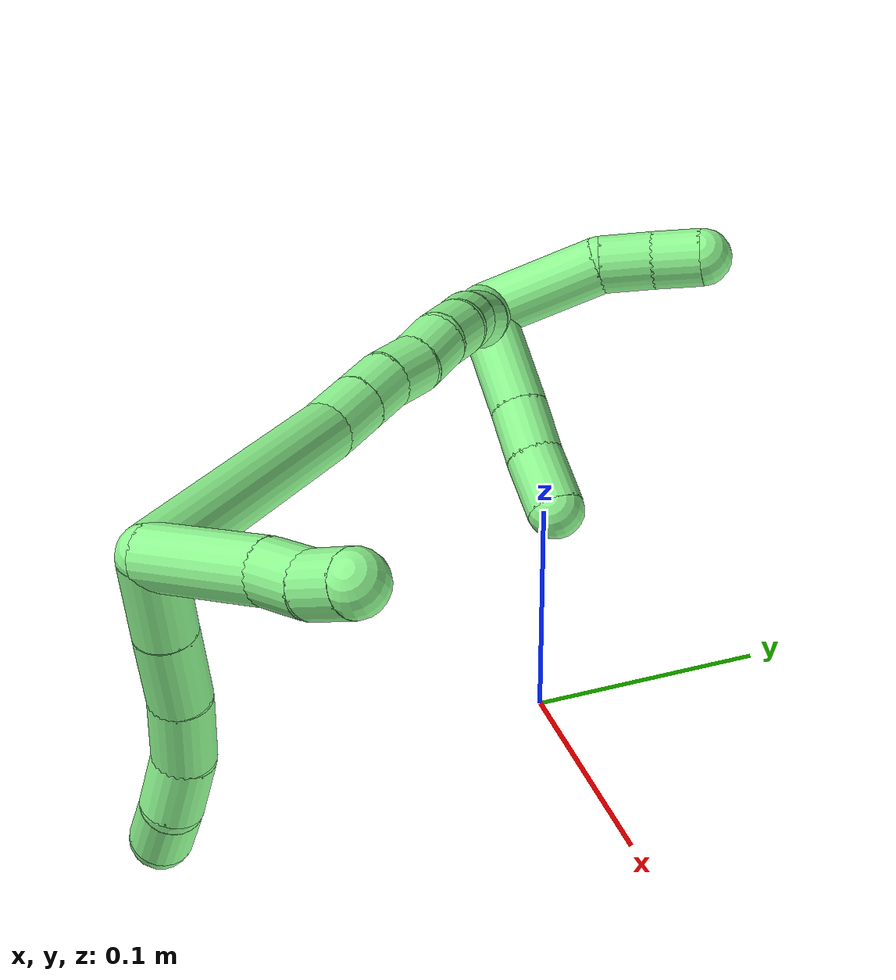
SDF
<sdf version="1.7">
 <world name="default">
  <model name="13">
   <static>0</static>
   <link name="13">
    <collision name="collision-cylinder-e_1_2_8">
     <pose>-0.000504 -0.008064 -0.015638 2.66547 -0.028644 -0.117911</pose>
     <geometry><cylinder><radius>0.0125</radius><length>0.035203</length></cylinder></geometry>
     <surface>
      <friction><ode><mu>1.16</mu><mu2>1.16</mu2><slip1>0</slip1><slip2>0</slip2></ode></friction>
      <contact><ode><kp>1e+06</kp><kd>1</kd><max_vel>0</max_vel><min_depth>0.001</min_depth></ode></contact>
     </surface>
    </collision>
    <visual name="visual-cylinder-e_1_2_8">
     <pose>-0.000504 -0.008064 -0.015638 2.66547 -0.028644 -0.117911</pose>
     <geometry><cylinder><radius>0.0125</radius><length>0.035203</length></cylinder></geometry>
     <material><ambient>0.564706 0.984314 0.572549 1</ambient></material>
    </visual>
    <collision name="collision-cylinder-e_2_8_9">
     <pose>-0.001632 -0.023233 -0.046283 2.69944 -0.037574 -0.166815</pose>
     <geometry><cylinder><radius>0.0125</radius><length>0.033233</length></cylinder></geometry>
     <surface>
      <friction><ode><mu>1.16</mu><mu2>1.16</mu2><slip1>0</slip1><slip2>0</slip2></ode></friction>
      <contact><ode><kp>1e+06</kp><kd>1</kd><max_vel>0</max_vel><min_depth>0.001</min_depth></ode></contact>
     </surface>
    </collision>
    <visual name="visual-cylinder-e_2_8_9">
     <pose>-0.001632 -0.023233 -0.046283 2.69944 -0.037574 -0.166815</pose>
     <geometry><cylinder><radius>0.0125</radius><length>0.033233</length></cylinder></geometry>
     <material><ambient>0.564706 0.984314 0.572549 1</ambient></material>
    </visual>
    <collision name="collision-cylinder-e_3_9_10">
     <pose>-0.004413 -0.037306 -0.074735 2.6634 -0.141421 -0.565562</pose>
     <geometry><cylinder><radius>0.0125</radius><length>0.030591</length></cylinder></geometry>
     <surface>
      <friction><ode><mu>1.16</mu><mu2>1.16</mu2><slip1>0</slip1><slip2>0</slip2></ode></friction>
      <contact><ode><kp>1e+06</kp><kd>1</kd><max_vel>0</max_vel><min_depth>0.001</min_depth></ode></contact>
     </surface>
    </collision>
    <visual name="visual-cylinder-e_3_9_10">
     <pose>-0.004413 -0.037306 -0.074735 2.6634 -0.141421 -0.565562</pose>
     <geometry><cylinder><radius>0.0125</radius><length>0.030591</length></cylinder></geometry>
     <material><ambient>0.564706 0.984314 0.572549 1</ambient></material>
    </visual>
    <collision name="collision-cylinder-e_4_10_11">
     <pose>-0.010717 -0.051595 -0.098049 2.5034 -0.325635 -0.922831</pose>
     <geometry><cylinder><radius>0.0125</radius><length>0.025939</length></cylinder></geometry>
     <surface>
      <friction><ode><mu>1.16</mu><mu2>1.16</mu2><slip1>0</slip1><slip2>0</slip2></ode></friction>
      <contact><ode><kp>1e+06</kp><kd>1</kd><max_vel>0</max_vel><min_depth>0.001</min_depth></ode></contact>
     </surface>
    </collision>
    <visual name="visual-cylinder-e_4_10_11">
     <pose>-0.010717 -0.051595 -0.098049 2.5034 -0.325635 -0.922831</pose>
     <geometry><cylinder><radius>0.0125</radius><length>0.025939</length></cylinder></geometry>
     <material><ambient>0.564706 0.984314 0.572549 1</ambient></material>
    </visual>
    <collision name="collision-cylinder-e_5_11_6">
     <pose>-0.020154 -0.062608 -0.118645 2.81006 -0.436125 -1.84819</pose>
     <geometry><cylinder><radius>0.0125</radius><length>0.025034</length></cylinder></geometry>
     <surface>
      <friction><ode><mu>1.16</mu><mu2>1.16</mu2><slip1>0</slip1><slip2>0</slip2></ode></friction>
      <contact><ode><kp>1e+06</kp><kd>1</kd><max_vel>0</max_vel><min_depth>0.001</min_depth></ode></contact>
     </surface>
    </collision>
    <visual name="visual-cylinder-e_5_11_6">
     <pose>-0.020154 -0.062608 -0.118645 2.81006 -0.436125 -1.84819</pose>
     <geometry><cylinder><radius>0.0125</radius><length>0.025034</length></cylinder></geometry>
     <material><ambient>0.564706 0.984314 0.572549 1</ambient></material>
    </visual>
    <collision name="collision-cylinder-e_1_2_12">
     <pose>0.026426 -0.002056 0.007126 0.280943 1.29717 0.213543</pose>
     <geometry><cylinder><radius>0.0125</radius><length>0.054893</length></cylinder></geometry>
     <surface>
      <friction><ode><mu>1.16</mu><mu2>1.16</mu2><slip1>0</slip1><slip2>0</slip2></ode></friction>
      <contact><ode><kp>1e+06</kp><kd>1</kd><max_vel>0</max_vel><min_depth>0.001</min_depth></ode></contact>
     </surface>
    </collision>
    <visual name="visual-cylinder-e_1_2_12">
     <pose>0.026426 -0.002056 0.007126 0.280943 1.29717 0.213543</pose>
     <geometry><cylinder><radius>0.0125</radius><length>0.054893</length></cylinder></geometry>
     <material><ambient>0.564706 0.984314 0.572549 1</ambient></material>
    </visual>
    <collision name="collision-cylinder-e_2_12_13">
     <pose>0.063206 -0.006817 0.018401 0.57757 1.12469 0.370178</pose>
     <geometry><cylinder><radius>0.0125</radius><length>0.022956</length></cylinder></geometry>
     <surface>
      <friction><ode><mu>1.16</mu><mu2>1.16</mu2><slip1>0</slip1><slip2>0</slip2></ode></friction>
      <contact><ode><kp>1e+06</kp><kd>1</kd><max_vel>0</max_vel><min_depth>0.001</min_depth></ode></contact>
     </surface>
    </collision>
    <visual name="visual-cylinder-e_2_12_13">
     <pose>0.063206 -0.006817 0.018401 0.57757 1.12469 0.370178</pose>
     <geometry><cylinder><radius>0.0125</radius><length>0.022956</length></cylinder></geometry>
     <material><ambient>0.564706 0.984314 0.572549 1</ambient></material>
    </visual>
    <collision name="collision-cylinder-e_3_13_5">
     <pose>0.083254 -0.009982 0.027888 0.086218 1.06588 0.050879</pose>
     <geometry><cylinder><radius>0.0125</radius><length>0.02215</length></cylinder></geometry>
     <surface>
      <friction><ode><mu>1.16</mu><mu2>1.16</mu2><slip1>0</slip1><slip2>0</slip2></ode></friction>
      <contact><ode><kp>1e+06</kp><kd>1</kd><max_vel>0</max_vel><min_depth>0.001</min_depth></ode></contact>
     </surface>
    </collision>
    <visual name="visual-cylinder-e_3_13_5">
     <pose>0.083254 -0.009982 0.027888 0.086218 1.06588 0.050879</pose>
     <geometry><cylinder><radius>0.0125</radius><length>0.02215</length></cylinder></geometry>
     <material><ambient>0.564706 0.984314 0.572549 1</ambient></material>
    </visual>
    <collision name="collision-cylinder-e_1_2_14">
     <pose>0.003164 0.048297 -0.047504 -2.34792 0.046673 -0.111278</pose>
     <geometry><cylinder><radius>0.0125</radius><length>0.135635</length></cylinder></geometry>
     <surface>
      <friction><ode><mu>1.16</mu><mu2>1.16</mu2><slip1>0</slip1><slip2>0</slip2></ode></friction>
      <contact><ode><kp>1e+06</kp><kd>1</kd><max_vel>0</max_vel><min_depth>0.001</min_depth></ode></contact>
     </surface>
    </collision>
    <visual name="visual-cylinder-e_1_2_14">
     <pose>0.003164 0.048297 -0.047504 -2.34792 0.046673 -0.111278</pose>
     <geometry><cylinder><radius>0.0125</radius><length>0.135635</length></cylinder></geometry>
     <material><ambient>0.564706 0.984314 0.572549 1</ambient></material>
    </visual>
    <collision name="collision-cylinder-e_2_14_15">
     <pose>0.008323 0.106459 -0.101605 -2.16027 0.166551 -0.309972</pose>
     <geometry><cylinder><radius>0.0125</radius><length>0.024069</length></cylinder></geometry>
     <surface>
      <friction><ode><mu>1.16</mu><mu2>1.16</mu2><slip1>0</slip1><slip2>0</slip2></ode></friction>
      <contact><ode><kp>1e+06</kp><kd>1</kd><max_vel>0</max_vel><min_depth>0.001</min_depth></ode></contact>
     </surface>
    </collision>
    <visual name="visual-cylinder-e_2_14_15">
     <pose>0.008323 0.106459 -0.101605 -2.16027 0.166551 -0.309972</pose>
     <geometry><cylinder><radius>0.0125</radius><length>0.024069</length></cylinder></geometry>
     <material><ambient>0.564706 0.984314 0.572549 1</ambient></material>
    </visual>
    <collision name="collision-cylinder-e_3_15_16">
     <pose>0.011995 0.124603 -0.113724 -2.15896 0.16695 -0.310224</pose>
     <geometry><cylinder><radius>0.0125</radius><length>0.020183</length></cylinder></geometry>
     <surface>
      <friction><ode><mu>1.16</mu><mu2>1.16</mu2><slip1>0</slip1><slip2>0</slip2></ode></friction>
      <contact><ode><kp>1e+06</kp><kd>1</kd><max_vel>0</max_vel><min_depth>0.001</min_depth></ode></contact>
     </surface>
    </collision>
    <visual name="visual-cylinder-e_3_15_16">
     <pose>0.011995 0.124603 -0.113724 -2.15896 0.16695 -0.310224</pose>
     <geometry><cylinder><radius>0.0125</radius><length>0.020183</length></cylinder></geometry>
     <material><ambient>0.564706 0.984314 0.572549 1</ambient></material>
    </visual>
    <collision name="collision-cylinder-e_4_16_17">
     <pose>0.016258 0.140272 -0.125484 -2.27186 0.261246 -0.551219</pose>
     <geometry><cylinder><radius>0.0125</radius><length>0.020022</length></cylinder></geometry>
     <surface>
      <friction><ode><mu>1.16</mu><mu2>1.16</mu2><slip1>0</slip1><slip2>0</slip2></ode></friction>
      <contact><ode><kp>1e+06</kp><kd>1</kd><max_vel>0</max_vel><min_depth>0.001</min_depth></ode></contact>
     </surface>
    </collision>
    <visual name="visual-cylinder-e_4_16_17">
     <pose>0.016258 0.140272 -0.125484 -2.27186 0.261246 -0.551219</pose>
     <geometry><cylinder><radius>0.0125</radius><length>0.020022</length></cylinder></geometry>
     <material><ambient>0.564706 0.984314 0.572549 1</ambient></material>
    </visual>
    <collision name="collision-cylinder-e_5_17_18">
     <pose>0.020027 0.156 -0.13712 -2.14541 0.118593 -0.217464</pose>
     <geometry><cylinder><radius>0.0125</radius><length>0.020005</length></cylinder></geometry>
     <surface>
      <friction><ode><mu>1.16</mu><mu2>1.16</mu2><slip1>0</slip1><slip2>0</slip2></ode></friction>
      <contact><ode><kp>1e+06</kp><kd>1</kd><max_vel>0</max_vel><min_depth>0.001</min_depth></ode></contact>
     </surface>
    </collision>
    <visual name="visual-cylinder-e_5_17_18">
     <pose>0.020027 0.156 -0.13712 -2.14541 0.118593 -0.217464</pose>
     <geometry><cylinder><radius>0.0125</radius><length>0.020005</length></cylinder></geometry>
     <material><ambient>0.564706 0.984314 0.572549 1</ambient></material>
    </visual>
    <collision name="collision-cylinder-e_6_18_19">
     <pose>0.021506 0.171338 -0.149703 -2.36916 0.02949 -0.072494</pose>
     <geometry><cylinder><radius>0.0125</radius><length>0.020072</length></cylinder></geometry>
     <surface>
      <friction><ode><mu>1.16</mu><mu2>1.16</mu2><slip1>0</slip1><slip2>0</slip2></ode></friction>
      <contact><ode><kp>1e+06</kp><kd>1</kd><max_vel>0</max_vel><min_depth>0.001</min_depth></ode></contact>
     </surface>
    </collision>
    <visual name="visual-cylinder-e_6_18_19">
     <pose>0.021506 0.171338 -0.149703 -2.36916 0.02949 -0.072494</pose>
     <geometry><cylinder><radius>0.0125</radius><length>0.020072</length></cylinder></geometry>
     <material><ambient>0.564706 0.984314 0.572549 1</ambient></material>
    </visual>
    <collision name="collision-cylinder-e_7_19_20">
     <pose>0.020011 0.184228 -0.164769 -2.49986 -0.180133 0.530652</pose>
     <geometry><cylinder><radius>0.0125</radius><length>0.020001</length></cylinder></geometry>
     <surface>
      <friction><ode><mu>1.16</mu><mu2>1.16</mu2><slip1>0</slip1><slip2>0</slip2></ode></friction>
      <contact><ode><kp>1e+06</kp><kd>1</kd><max_vel>0</max_vel><min_depth>0.001</min_depth></ode></contact>
     </surface>
    </collision>
    <visual name="visual-cylinder-e_7_19_20">
     <pose>0.020011 0.184228 -0.164769 -2.49986 -0.180133 0.530652</pose>
     <geometry><cylinder><radius>0.0125</radius><length>0.020001</length></cylinder></geometry>
     <material><ambient>0.564706 0.984314 0.572549 1</ambient></material>
    </visual>
    <collision name="collision-cylinder-e_8_20_21">
     <pose>0.017369 0.194893 -0.181402 -2.64207 -0.085018 0.330446</pose>
     <geometry><cylinder><radius>0.0125</radius><length>0.020013</length></cylinder></geometry>
     <surface>
      <friction><ode><mu>1.16</mu><mu2>1.16</mu2><slip1>0</slip1><slip2>0</slip2></ode></friction>
      <contact><ode><kp>1e+06</kp><kd>1</kd><max_vel>0</max_vel><min_depth>0.001</min_depth></ode></contact>
     </surface>
    </collision>
    <visual name="visual-cylinder-e_8_20_21">
     <pose>0.017369 0.194893 -0.181402 -2.64207 -0.085018 0.330446</pose>
     <geometry><cylinder><radius>0.0125</radius><length>0.020013</length></cylinder></geometry>
     <material><ambient>0.564706 0.984314 0.572549 1</ambient></material>
    </visual>
    <collision name="collision-cylinder-e_9_21_1">
     <pose>0.014083 0.205564 -0.197856 -2.48829 -0.246149 0.700173</pose>
     <geometry><cylinder><radius>0.0125</radius><length>0.020001</length></cylinder></geometry>
     <surface>
      <friction><ode><mu>1.16</mu><mu2>1.16</mu2><slip1>0</slip1><slip2>0</slip2></ode></friction>
      <contact><ode><kp>1e+06</kp><kd>1</kd><max_vel>0</max_vel><min_depth>0.001</min_depth></ode></contact>
     </surface>
    </collision>
    <visual name="visual-cylinder-e_9_21_1">
     <pose>0.014083 0.205564 -0.197856 -2.48829 -0.246149 0.700173</pose>
     <geometry><cylinder><radius>0.0125</radius><length>0.020001</length></cylinder></geometry>
     <material><ambient>0.564706 0.984314 0.572549 1</ambient></material>
    </visual>
    <collision name="collision-cylinder-e_1_1_22">
     <pose>0.024375 0.190637 -0.208646 1.71802 0.5439 0.625316</pose>
     <geometry><cylinder><radius>0.0125</radius><length>0.049198</length></cylinder></geometry>
     <surface>
      <friction><ode><mu>1.16</mu><mu2>1.16</mu2><slip1>0</slip1><slip2>0</slip2></ode></friction>
      <contact><ode><kp>1e+06</kp><kd>1</kd><max_vel>0</max_vel><min_depth>0.001</min_depth></ode></contact>
     </surface>
    </collision>
    <visual name="visual-cylinder-e_1_1_22">
     <pose>0.024375 0.190637 -0.208646 1.71802 0.5439 0.625316</pose>
     <geometry><cylinder><radius>0.0125</radius><length>0.049198</length></cylinder></geometry>
     <material><ambient>0.564706 0.984314 0.572549 1</ambient></material>
    </visual>
    <collision name="collision-cylinder-e_2_22_23">
     <pose>0.043153 0.159462 -0.212955 1.68821 0.525649 0.587773</pose>
     <geometry><cylinder><radius>0.0125</radius><length>0.024105</length></cylinder></geometry>
     <surface>
      <friction><ode><mu>1.16</mu><mu2>1.16</mu2><slip1>0</slip1><slip2>0</slip2></ode></friction>
      <contact><ode><kp>1e+06</kp><kd>1</kd><max_vel>0</max_vel><min_depth>0.001</min_depth></ode></contact>
     </surface>
    </collision>
    <visual name="visual-cylinder-e_2_22_23">
     <pose>0.043153 0.159462 -0.212955 1.68821 0.525649 0.587773</pose>
     <geometry><cylinder><radius>0.0125</radius><length>0.024105</length></cylinder></geometry>
     <material><ambient>0.564706 0.984314 0.572549 1</ambient></material>
    </visual>
    <collision name="collision-cylinder-e_3_23_4">
     <pose>0.056642 0.138065 -0.215105 1.65469 0.591345 0.639819</pose>
     <geometry><cylinder><radius>0.0125</radius><length>0.026697</length></cylinder></geometry>
     <surface>
      <friction><ode><mu>1.16</mu><mu2>1.16</mu2><slip1>0</slip1><slip2>0</slip2></ode></friction>
      <contact><ode><kp>1e+06</kp><kd>1</kd><max_vel>0</max_vel><min_depth>0.001</min_depth></ode></contact>
     </surface>
    </collision>
    <visual name="visual-cylinder-e_3_23_4">
     <pose>0.056642 0.138065 -0.215105 1.65469 0.591345 0.639819</pose>
     <geometry><cylinder><radius>0.0125</radius><length>0.026697</length></cylinder></geometry>
     <material><ambient>0.564706 0.984314 0.572549 1</ambient></material>
    </visual>
    <collision name="collision-cylinder-e_1_1_24">
     <pose>0.03599 0.224027 -0.202094 -1.30185 1.07913 -0.855861</pose>
     <geometry><cylinder><radius>0.0125</radius><length>0.05523</length></cylinder></geometry>
     <surface>
      <friction><ode><mu>1.16</mu><mu2>1.16</mu2><slip1>0</slip1><slip2>0</slip2></ode></friction>
      <contact><ode><kp>1e+06</kp><kd>1</kd><max_vel>0</max_vel><min_depth>0.001</min_depth></ode></contact>
     </surface>
    </collision>
    <visual name="visual-cylinder-e_1_1_24">
     <pose>0.03599 0.224027 -0.202094 -1.30185 1.07913 -0.855861</pose>
     <geometry><cylinder><radius>0.0125</radius><length>0.05523</length></cylinder></geometry>
     <material><ambient>0.564706 0.984314 0.572549 1</ambient></material>
    </visual>
    <collision name="collision-cylinder-e_2_24_25">
     <pose>0.071336 0.239909 -0.200251 -2.02581 1.24726 -1.71256</pose>
     <geometry><cylinder><radius>0.0125</radius><length>0.023209</length></cylinder></geometry>
     <surface>
      <friction><ode><mu>1.16</mu><mu2>1.16</mu2><slip1>0</slip1><slip2>0</slip2></ode></friction>
      <contact><ode><kp>1e+06</kp><kd>1</kd><max_vel>0</max_vel><min_depth>0.001</min_depth></ode></contact>
     </surface>
    </collision>
    <visual name="visual-cylinder-e_2_24_25">
     <pose>0.071336 0.239909 -0.200251 -2.02581 1.24726 -1.71256</pose>
     <geometry><cylinder><radius>0.0125</radius><length>0.023209</length></cylinder></geometry>
     <material><ambient>0.564706 0.984314 0.572549 1</ambient></material>
    </visual>
    <collision name="collision-cylinder-e_3_25_3">
     <pose>0.092837 0.245587 -0.202511 -1.83452 1.3417 -1.6065</pose>
     <geometry><cylinder><radius>0.0125</radius><length>0.021562</length></cylinder></geometry>
     <surface>
      <friction><ode><mu>1.16</mu><mu2>1.16</mu2><slip1>0</slip1><slip2>0</slip2></ode></friction>
      <contact><ode><kp>1e+06</kp><kd>1</kd><max_vel>0</max_vel><min_depth>0.001</min_depth></ode></contact>
     </surface>
    </collision>
    <visual name="visual-cylinder-e_3_25_3">
     <pose>0.092837 0.245587 -0.202511 -1.83452 1.3417 -1.6065</pose>
     <geometry><cylinder><radius>0.0125</radius><length>0.021562</length></cylinder></geometry>
     <material><ambient>0.564706 0.984314 0.572549 1</ambient></material>
    </visual>
    <collision name="collision-sphere-3">
     <pose>0.103336 0.24795 -0.203149 0 -0 0</pose>
     <geometry><sphere><radius>0.0125</radius></sphere></geometry>
     <surface>
      <friction><ode><mu>1.16</mu><mu2>1.16</mu2><slip1>0</slip1><slip2>0</slip2></ode></friction>
      <contact><ode><kp>1e+06</kp><kd>1</kd><max_vel>0</max_vel><min_depth>0.001</min_depth></ode></contact>
     </surface>
    </collision>
    <visual name="visual-sphere-3">
     <pose>0.103336 0.24795 -0.203149 0 -0 0</pose>
     <geometry><sphere><radius>0.0125</radius></sphere></geometry>
     <material><ambient>0.564706 0.984314 0.572549 1</ambient></material>
    </visual>
    <collision name="collision-sphere-25">
     <pose>0.082338 0.243223 -0.201873 0 -0 0</pose>
     <geometry><sphere><radius>0.0125</radius></sphere></geometry>
     <surface>
      <friction><ode><mu>1.16</mu><mu2>1.16</mu2><slip1>0</slip1><slip2>0</slip2></ode></friction>
      <contact><ode><kp>1e+06</kp><kd>1</kd><max_vel>0</max_vel><min_depth>0.001</min_depth></ode></contact>
     </surface>
    </collision>
    <visual name="visual-sphere-25">
     <pose>0.082338 0.243223 -0.201873 0 -0 0</pose>
     <geometry><sphere><radius>0.0125</radius></sphere></geometry>
     <material><ambient>0.564706 0.984314 0.572549 1</ambient></material>
    </visual>
    <collision name="collision-sphere-24">
     <pose>0.060334 0.236595 -0.19863 0 -0 0</pose>
     <geometry><sphere><radius>0.0125</radius></sphere></geometry>
     <surface>
      <friction><ode><mu>1.16</mu><mu2>1.16</mu2><slip1>0</slip1><slip2>0</slip2></ode></friction>
      <contact><ode><kp>1e+06</kp><kd>1</kd><max_vel>0</max_vel><min_depth>0.001</min_depth></ode></contact>
     </surface>
    </collision>
    <visual name="visual-sphere-24">
     <pose>0.060334 0.236595 -0.19863 0 -0 0</pose>
     <geometry><sphere><radius>0.0125</radius></sphere></geometry>
     <material><ambient>0.564706 0.984314 0.572549 1</ambient></material>
    </visual>
    <collision name="collision-sphere-4">
     <pose>0.064083 0.127023 -0.216033 0 -0 0</pose>
     <geometry><sphere><radius>0.0125</radius></sphere></geometry>
     <surface>
      <friction><ode><mu>1.16</mu><mu2>1.16</mu2><slip1>0</slip1><slip2>0</slip2></ode></friction>
      <contact><ode><kp>1e+06</kp><kd>1</kd><max_vel>0</max_vel><min_depth>0.001</min_depth></ode></contact>
     </surface>
    </collision>
    <visual name="visual-sphere-4">
     <pose>0.064083 0.127023 -0.216033 0 -0 0</pose>
     <geometry><sphere><radius>0.0125</radius></sphere></geometry>
     <material><ambient>0.564706 0.984314 0.572549 1</ambient></material>
    </visual>
    <collision name="collision-sphere-23">
     <pose>0.0492 0.149108 -0.214176 0 -0 0</pose>
     <geometry><sphere><radius>0.0125</radius></sphere></geometry>
     <surface>
      <friction><ode><mu>1.16</mu><mu2>1.16</mu2><slip1>0</slip1><slip2>0</slip2></ode></friction>
      <contact><ode><kp>1e+06</kp><kd>1</kd><max_vel>0</max_vel><min_depth>0.001</min_depth></ode></contact>
     </surface>
    </collision>
    <visual name="visual-sphere-23">
     <pose>0.0492 0.149108 -0.214176 0 -0 0</pose>
     <geometry><sphere><radius>0.0125</radius></sphere></geometry>
     <material><ambient>0.564706 0.984314 0.572549 1</ambient></material>
    </visual>
    <collision name="collision-sphere-22">
     <pose>0.037105 0.169815 -0.211734 0 -0 0</pose>
     <geometry><sphere><radius>0.0125</radius></sphere></geometry>
     <surface>
      <friction><ode><mu>1.16</mu><mu2>1.16</mu2><slip1>0</slip1><slip2>0</slip2></ode></friction>
      <contact><ode><kp>1e+06</kp><kd>1</kd><max_vel>0</max_vel><min_depth>0.001</min_depth></ode></contact>
     </surface>
    </collision>
    <visual name="visual-sphere-22">
     <pose>0.037105 0.169815 -0.211734 0 -0 0</pose>
     <geometry><sphere><radius>0.0125</radius></sphere></geometry>
     <material><ambient>0.564706 0.984314 0.572549 1</ambient></material>
    </visual>
    <collision name="collision-sphere-1">
     <pose>0.011646 0.211459 -0.205558 0 -0 0</pose>
     <geometry><sphere><radius>0.0125</radius></sphere></geometry>
     <surface>
      <friction><ode><mu>1.16</mu><mu2>1.16</mu2><slip1>0</slip1><slip2>0</slip2></ode></friction>
      <contact><ode><kp>1e+06</kp><kd>1</kd><max_vel>0</max_vel><min_depth>0.001</min_depth></ode></contact>
     </surface>
    </collision>
    <visual name="visual-sphere-1">
     <pose>0.011646 0.211459 -0.205558 0 -0 0</pose>
     <geometry><sphere><radius>0.0125</radius></sphere></geometry>
     <material><ambient>0.564706 0.984314 0.572549 1</ambient></material>
    </visual>
    <collision name="collision-sphere-21">
     <pose>0.01652 0.199668 -0.190154 0 -0 0</pose>
     <geometry><sphere><radius>0.0125</radius></sphere></geometry>
     <surface>
      <friction><ode><mu>1.16</mu><mu2>1.16</mu2><slip1>0</slip1><slip2>0</slip2></ode></friction>
      <contact><ode><kp>1e+06</kp><kd>1</kd><max_vel>0</max_vel><min_depth>0.001</min_depth></ode></contact>
     </surface>
    </collision>
    <visual name="visual-sphere-21">
     <pose>0.01652 0.199668 -0.190154 0 -0 0</pose>
     <geometry><sphere><radius>0.0125</radius></sphere></geometry>
     <material><ambient>0.564706 0.984314 0.572549 1</ambient></material>
    </visual>
    <collision name="collision-sphere-6">
     <pose>-0.025442 -0.066301 -0.129373 0 -0 0</pose>
     <geometry><sphere><radius>0.0125</radius></sphere></geometry>
     <surface>
      <friction><ode><mu>1.16</mu><mu2>1.16</mu2><slip1>0</slip1><slip2>0</slip2></ode></friction>
      <contact><ode><kp>1e+06</kp><kd>1</kd><max_vel>0</max_vel><min_depth>0.001</min_depth></ode></contact>
     </surface>
    </collision>
    <visual name="visual-sphere-6">
     <pose>-0.025442 -0.066301 -0.129373 0 -0 0</pose>
     <geometry><sphere><radius>0.0125</radius></sphere></geometry>
     <material><ambient>0.564706 0.984314 0.572549 1</ambient></material>
    </visual>
    <collision name="collision-sphere-11">
     <pose>-0.014866 -0.058915 -0.107918 0 -0 0</pose>
     <geometry><sphere><radius>0.0125</radius></sphere></geometry>
     <surface>
      <friction><ode><mu>1.16</mu><mu2>1.16</mu2><slip1>0</slip1><slip2>0</slip2></ode></friction>
      <contact><ode><kp>1e+06</kp><kd>1</kd><max_vel>0</max_vel><min_depth>0.001</min_depth></ode></contact>
     </surface>
    </collision>
    <visual name="visual-sphere-11">
     <pose>-0.014866 -0.058915 -0.107918 0 -0 0</pose>
     <geometry><sphere><radius>0.0125</radius></sphere></geometry>
     <material><ambient>0.564706 0.984314 0.572549 1</ambient></material>
    </visual>
    <collision name="collision-sphere-10">
     <pose>-0.006568 -0.044275 -0.088179 0 -0 0</pose>
     <geometry><sphere><radius>0.0125</radius></sphere></geometry>
     <surface>
      <friction><ode><mu>1.16</mu><mu2>1.16</mu2><slip1>0</slip1><slip2>0</slip2></ode></friction>
      <contact><ode><kp>1e+06</kp><kd>1</kd><max_vel>0</max_vel><min_depth>0.001</min_depth></ode></contact>
     </surface>
    </collision>
    <visual name="visual-sphere-10">
     <pose>-0.006568 -0.044275 -0.088179 0 -0 0</pose>
     <geometry><sphere><radius>0.0125</radius></sphere></geometry>
     <material><ambient>0.564706 0.984314 0.572549 1</ambient></material>
    </visual>
    <collision name="collision-sphere-9">
     <pose>-0.002257 -0.030338 -0.061291 0 -0 0</pose>
     <geometry><sphere><radius>0.0125</radius></sphere></geometry>
     <surface>
      <friction><ode><mu>1.16</mu><mu2>1.16</mu2><slip1>0</slip1><slip2>0</slip2></ode></friction>
      <contact><ode><kp>1e+06</kp><kd>1</kd><max_vel>0</max_vel><min_depth>0.001</min_depth></ode></contact>
     </surface>
    </collision>
    <visual name="visual-sphere-9">
     <pose>-0.002257 -0.030338 -0.061291 0 -0 0</pose>
     <geometry><sphere><radius>0.0125</radius></sphere></geometry>
     <material><ambient>0.564706 0.984314 0.572549 1</ambient></material>
    </visual>
    <collision name="collision-sphere-2">
     <geometry><sphere><radius>0.0125</radius></sphere></geometry>
     <surface>
      <friction><ode><mu>1.16</mu><mu2>1.16</mu2><slip1>0</slip1><slip2>0</slip2></ode></friction>
      <contact><ode><kp>1e+06</kp><kd>1</kd><max_vel>0</max_vel><min_depth>0.001</min_depth></ode></contact>
     </surface>
    </collision>
    <visual name="visual-sphere-2">
     <geometry><sphere><radius>0.0125</radius></sphere></geometry>
     <material><ambient>0.564706 0.984314 0.572549 1</ambient></material>
    </visual>
    <collision name="collision-sphere-19">
     <pose>0.021802 0.178338 -0.156888 0 -0 0</pose>
     <geometry><sphere><radius>0.0125</radius></sphere></geometry>
     <surface>
      <friction><ode><mu>1.16</mu><mu2>1.16</mu2><slip1>0</slip1><slip2>0</slip2></ode></friction>
      <contact><ode><kp>1e+06</kp><kd>1</kd><max_vel>0</max_vel><min_depth>0.001</min_depth></ode></contact>
     </surface>
    </collision>
    <visual name="visual-sphere-19">
     <pose>0.021802 0.178338 -0.156888 0 -0 0</pose>
     <geometry><sphere><radius>0.0125</radius></sphere></geometry>
     <material><ambient>0.564706 0.984314 0.572549 1</ambient></material>
    </visual>
    <collision name="collision-sphere-8">
     <pose>-0.001008 -0.016128 -0.031275 0 -0 0</pose>
     <geometry><sphere><radius>0.0125</radius></sphere></geometry>
     <surface>
      <friction><ode><mu>1.16</mu><mu2>1.16</mu2><slip1>0</slip1><slip2>0</slip2></ode></friction>
      <contact><ode><kp>1e+06</kp><kd>1</kd><max_vel>0</max_vel><min_depth>0.001</min_depth></ode></contact>
     </surface>
    </collision>
    <visual name="visual-sphere-8">
     <pose>-0.001008 -0.016128 -0.031275 0 -0 0</pose>
     <geometry><sphere><radius>0.0125</radius></sphere></geometry>
     <material><ambient>0.564706 0.984314 0.572549 1</ambient></material>
    </visual>
    <collision name="collision-sphere-12">
     <pose>0.052851 -0.004113 0.014252 0 -0 0</pose>
     <geometry><sphere><radius>0.0125</radius></sphere></geometry>
     <surface>
      <friction><ode><mu>1.16</mu><mu2>1.16</mu2><slip1>0</slip1><slip2>0</slip2></ode></friction>
      <contact><ode><kp>1e+06</kp><kd>1</kd><max_vel>0</max_vel><min_depth>0.001</min_depth></ode></contact>
     </surface>
    </collision>
    <visual name="visual-sphere-12">
     <pose>0.052851 -0.004113 0.014252 0 -0 0</pose>
     <geometry><sphere><radius>0.0125</radius></sphere></geometry>
     <material><ambient>0.564706 0.984314 0.572549 1</ambient></material>
    </visual>
    <collision name="collision-sphere-13">
     <pose>0.073561 -0.009521 0.02255 0 -0 0</pose>
     <geometry><sphere><radius>0.0125</radius></sphere></geometry>
     <surface>
      <friction><ode><mu>1.16</mu><mu2>1.16</mu2><slip1>0</slip1><slip2>0</slip2></ode></friction>
      <contact><ode><kp>1e+06</kp><kd>1</kd><max_vel>0</max_vel><min_depth>0.001</min_depth></ode></contact>
     </surface>
    </collision>
    <visual name="visual-sphere-13">
     <pose>0.073561 -0.009521 0.02255 0 -0 0</pose>
     <geometry><sphere><radius>0.0125</radius></sphere></geometry>
     <material><ambient>0.564706 0.984314 0.572549 1</ambient></material>
    </visual>
    <collision name="collision-sphere-5">
     <pose>0.092947 -0.010443 0.033225 0 -0 0</pose>
     <geometry><sphere><radius>0.0125</radius></sphere></geometry>
     <surface>
      <friction><ode><mu>1.16</mu><mu2>1.16</mu2><slip1>0</slip1><slip2>0</slip2></ode></friction>
      <contact><ode><kp>1e+06</kp><kd>1</kd><max_vel>0</max_vel><min_depth>0.001</min_depth></ode></contact>
     </surface>
    </collision>
    <visual name="visual-sphere-5">
     <pose>0.092947 -0.010443 0.033225 0 -0 0</pose>
     <geometry><sphere><radius>0.0125</radius></sphere></geometry>
     <material><ambient>0.564706 0.984314 0.572549 1</ambient></material>
    </visual>
    <collision name="collision-sphere-14">
     <pose>0.006328 0.096594 -0.095008 0 -0 0</pose>
     <geometry><sphere><radius>0.0125</radius></sphere></geometry>
     <surface>
      <friction><ode><mu>1.16</mu><mu2>1.16</mu2><slip1>0</slip1><slip2>0</slip2></ode></friction>
      <contact><ode><kp>1e+06</kp><kd>1</kd><max_vel>0</max_vel><min_depth>0.001</min_depth></ode></contact>
     </surface>
    </collision>
    <visual name="visual-sphere-14">
     <pose>0.006328 0.096594 -0.095008 0 -0 0</pose>
     <geometry><sphere><radius>0.0125</radius></sphere></geometry>
     <material><ambient>0.564706 0.984314 0.572549 1</ambient></material>
    </visual>
    <collision name="collision-sphere-15">
     <pose>0.010318 0.116324 -0.108203 0 -0 0</pose>
     <geometry><sphere><radius>0.0125</radius></sphere></geometry>
     <surface>
      <friction><ode><mu>1.16</mu><mu2>1.16</mu2><slip1>0</slip1><slip2>0</slip2></ode></friction>
      <contact><ode><kp>1e+06</kp><kd>1</kd><max_vel>0</max_vel><min_depth>0.001</min_depth></ode></contact>
     </surface>
    </collision>
    <visual name="visual-sphere-15">
     <pose>0.010318 0.116324 -0.108203 0 -0 0</pose>
     <geometry><sphere><radius>0.0125</radius></sphere></geometry>
     <material><ambient>0.564706 0.984314 0.572549 1</ambient></material>
    </visual>
    <collision name="collision-sphere-16">
     <pose>0.013672 0.132882 -0.119245 0 -0 0</pose>
     <geometry><sphere><radius>0.0125</radius></sphere></geometry>
     <surface>
      <friction><ode><mu>1.16</mu><mu2>1.16</mu2><slip1>0</slip1><slip2>0</slip2></ode></friction>
      <contact><ode><kp>1e+06</kp><kd>1</kd><max_vel>0</max_vel><min_depth>0.001</min_depth></ode></contact>
     </surface>
    </collision>
    <visual name="visual-sphere-16">
     <pose>0.013672 0.132882 -0.119245 0 -0 0</pose>
     <geometry><sphere><radius>0.0125</radius></sphere></geometry>
     <material><ambient>0.564706 0.984314 0.572549 1</ambient></material>
    </visual>
    <collision name="collision-sphere-17">
     <pose>0.018844 0.147663 -0.131722 0 -0 0</pose>
     <geometry><sphere><radius>0.0125</radius></sphere></geometry>
     <surface>
      <friction><ode><mu>1.16</mu><mu2>1.16</mu2><slip1>0</slip1><slip2>0</slip2></ode></friction>
      <contact><ode><kp>1e+06</kp><kd>1</kd><max_vel>0</max_vel><min_depth>0.001</min_depth></ode></contact>
     </surface>
    </collision>
    <visual name="visual-sphere-17">
     <pose>0.018844 0.147663 -0.131722 0 -0 0</pose>
     <geometry><sphere><radius>0.0125</radius></sphere></geometry>
     <material><ambient>0.564706 0.984314 0.572549 1</ambient></material>
    </visual>
    <collision name="collision-sphere-18">
     <pose>0.021211 0.164337 -0.142518 0 -0 0</pose>
     <geometry><sphere><radius>0.0125</radius></sphere></geometry>
     <surface>
      <friction><ode><mu>1.16</mu><mu2>1.16</mu2><slip1>0</slip1><slip2>0</slip2></ode></friction>
      <contact><ode><kp>1e+06</kp><kd>1</kd><max_vel>0</max_vel><min_depth>0.001</min_depth></ode></contact>
     </surface>
    </collision>
    <visual name="visual-sphere-18">
     <pose>0.021211 0.164337 -0.142518 0 -0 0</pose>
     <geometry><sphere><radius>0.0125</radius></sphere></geometry>
     <material><ambient>0.564706 0.984314 0.572549 1</ambient></material>
    </visual>
    <collision name="collision-sphere-20">
     <pose>0.018219 0.190117 -0.17265 0 -0 0</pose>
     <geometry><sphere><radius>0.0125</radius></sphere></geometry>
     <surface>
      <friction><ode><mu>1.16</mu><mu2>1.16</mu2><slip1>0</slip1><slip2>0</slip2></ode></friction>
      <contact><ode><kp>1e+06</kp><kd>1</kd><max_vel>0</max_vel><min_depth>0.001</min_depth></ode></contact>
     </surface>
    </collision>
    <visual name="visual-sphere-20">
     <pose>0.018219 0.190117 -0.17265 0 -0 0</pose>
     <geometry><sphere><radius>0.0125</radius></sphere></geometry>
     <material><ambient>0.564706 0.984314 0.572549 1</ambient></material>
    </visual>
    <inertial>
     <pose>0.021616 0.089659 -0.106801 0 -0 0</pose>
     <mass>0.75</mass>
     <inertia>
      <ixx>0.000247</ixx>
      <ixy>0</ixy>
      <ixz>0</ixz>
      <iyy>-0.000148</iyy>
      <iyz>0</iyz>
      <izz>-0.000222</izz>
     </inertia>
    </inertial>
   </link>
   <pose>0.093331 -0.188298 0.183858 0.586356 -0.087105 0.845309</pose>
  </model>
 </world>
</sdf>
